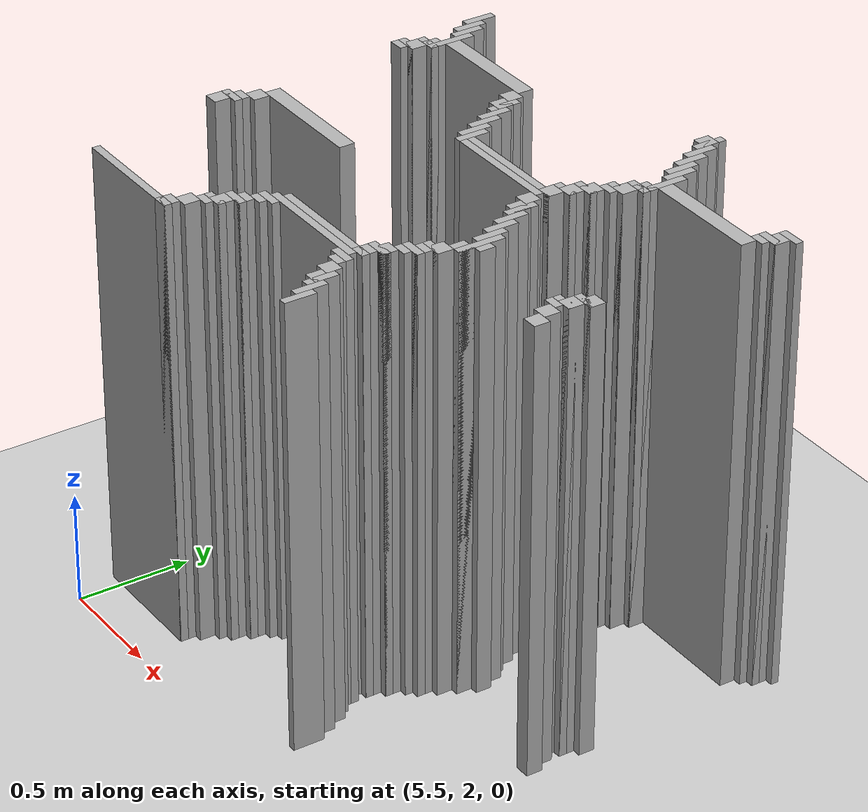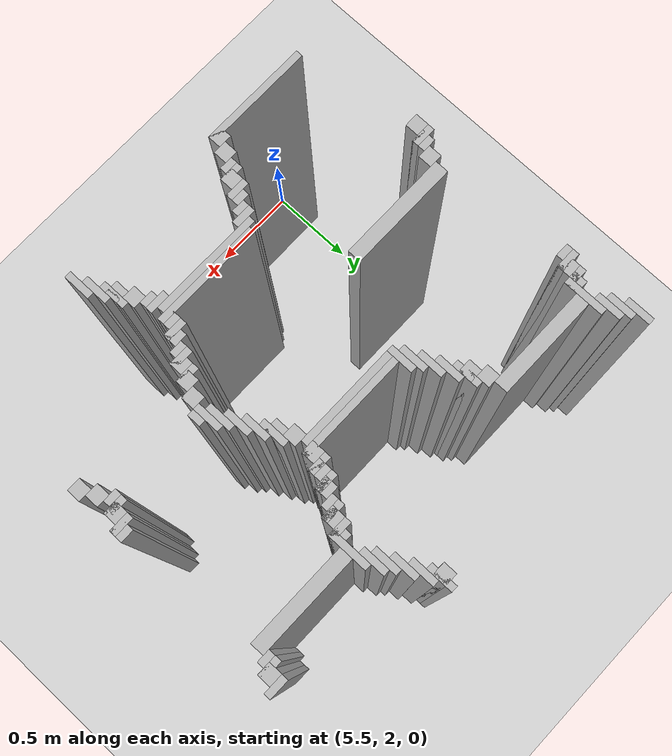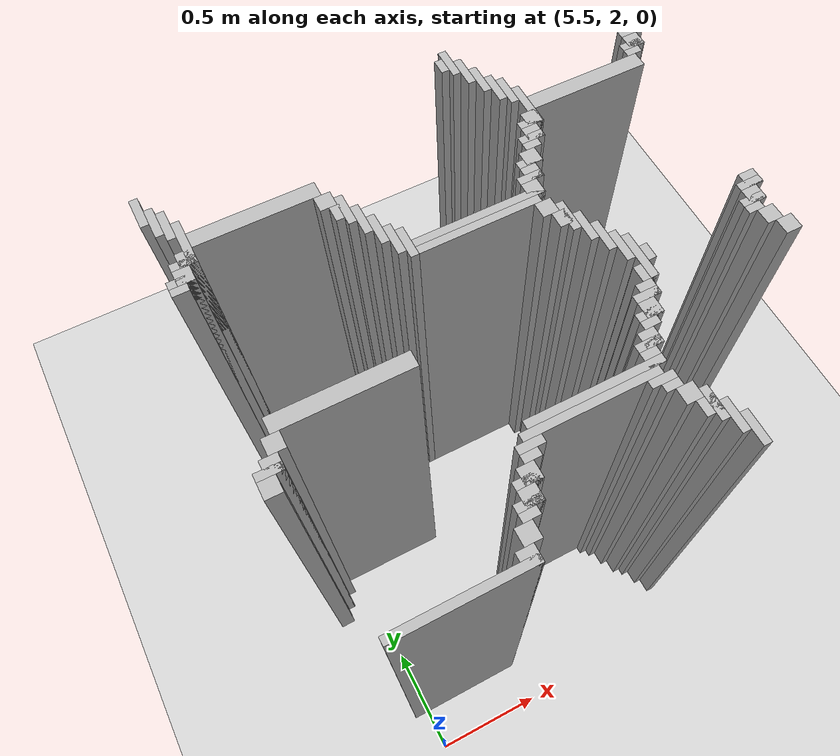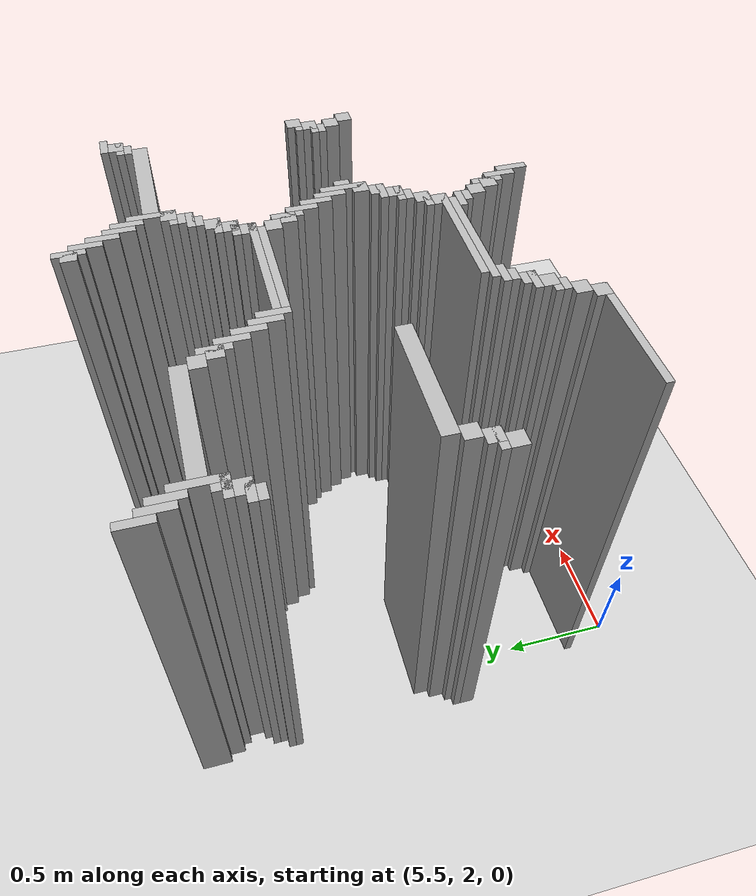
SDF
<sdf version="1.6">
 <world name="slam_world">
  <model name="ground_plane">
   <static>true</static>
   <link name="link">
    <collision name="collision">
     <geometry><plane><normal>0 0 1</normal><size>100 100</size></plane></geometry>
    </collision>
    <visual name="visual">
     <geometry><plane><normal>0 0 1</normal><size>100 100</size></plane></geometry>
     <material>
      <ambient>0.8 0.8 0.8 1</ambient>
      <diffuse>0.8 0.8 0.8 1</diffuse>
      <specular>0.8 0.8 0.8 1</specular>
     </material>
    </visual>
   </link>
  </model>
  <model name="wall_4433">
   <static>true</static>
   <pose>6.69953596287703 4.211136890951276 1.0 0 0 0</pose>
   <link name="link">
    <collision name="collision">
     <geometry><box><size>0.03480278422273782 0.13921113689095127 2.0</size></box></geometry>
    </collision>
    <visual name="visual">
     <geometry><box><size>0.03480278422273782 0.13921113689095127 2.0</size></box></geometry>
     <material><ambient>0.5 0.5 0.5 1</ambient><diffuse>0.7 0.7 0.7 1</diffuse></material>
    </visual>
   </link>
  </model>
  <model name="wall_4447">
   <static>true</static>
   <pose>6.682134570765661 4.211136890951276 1.0 0 0 0</pose>
   <link name="link">
    <collision name="collision">
     <geometry><box><size>0.06960556844547564 0.06960556844547564 2.0</size></box></geometry>
    </collision>
    <visual name="visual">
     <geometry><box><size>0.06960556844547564 0.06960556844547564 2.0</size></box></geometry>
     <material><ambient>0.5 0.5 0.5 1</ambient><diffuse>0.7 0.7 0.7 1</diffuse></material>
    </visual>
   </link>
  </model>
  <model name="wall_4462">
   <static>true</static>
   <pose>6.734338747099768 4.1415313225058 1.0 0 0 0</pose>
   <link name="link">
    <collision name="collision">
     <geometry><box><size>0.03480278422273782 0.13921113689095127 2.0</size></box></geometry>
    </collision>
    <visual name="visual">
     <geometry><box><size>0.03480278422273782 0.13921113689095127 2.0</size></box></geometry>
     <material><ambient>0.5 0.5 0.5 1</ambient><diffuse>0.7 0.7 0.7 1</diffuse></material>
    </visual>
   </link>
  </model>
  <model name="wall_4486">
   <static>true</static>
   <pose>5.307424593967517 4.071925754060325 1.0 0 0 0</pose>
   <link name="link">
    <collision name="collision">
     <geometry><box><size>0.03480278422273782 0.13921113689095127 2.0</size></box></geometry>
    </collision>
    <visual name="visual">
     <geometry><box><size>0.03480278422273782 0.13921113689095127 2.0</size></box></geometry>
     <material><ambient>0.5 0.5 0.5 1</ambient><diffuse>0.7 0.7 0.7 1</diffuse></material>
    </visual>
   </link>
  </model>
  <model name="wall_4487">
   <static>true</static>
   <pose>6.769141531322505 4.071925754060325 1.0 0 0 0</pose>
   <link name="link">
    <collision name="collision">
     <geometry><box><size>0.03480278422273782 0.13921113689095127 2.0</size></box></geometry>
    </collision>
    <visual name="visual">
     <geometry><box><size>0.03480278422273782 0.13921113689095127 2.0</size></box></geometry>
     <material><ambient>0.5 0.5 0.5 1</ambient><diffuse>0.7 0.7 0.7 1</diffuse></material>
    </visual>
   </link>
  </model>
  <model name="wall_4501">
   <static>true</static>
   <pose>5.342227378190255 4.002320185614849 1.0 0 0 0</pose>
   <link name="link">
    <collision name="collision">
     <geometry><box><size>0.03480278422273782 0.13921113689095127 2.0</size></box></geometry>
    </collision>
    <visual name="visual">
     <geometry><box><size>0.03480278422273782 0.13921113689095127 2.0</size></box></geometry>
     <material><ambient>0.5 0.5 0.5 1</ambient><diffuse>0.7 0.7 0.7 1</diffuse></material>
    </visual>
   </link>
  </model>
  <model name="wall_4502">
   <static>true</static>
   <pose>6.803944315545244 4.002320185614849 1.0 0 0 0</pose>
   <link name="link">
    <collision name="collision">
     <geometry><box><size>0.03480278422273782 0.13921113689095127 2.0</size></box></geometry>
    </collision>
    <visual name="visual">
     <geometry><box><size>0.03480278422273782 0.13921113689095127 2.0</size></box></geometry>
     <material><ambient>0.5 0.5 0.5 1</ambient><diffuse>0.7 0.7 0.7 1</diffuse></material>
    </visual>
   </link>
  </model>
  <model name="wall_4516">
   <static>true</static>
   <pose>5.377030162412993 3.967517401392111 1.0 0 0 0</pose>
   <link name="link">
    <collision name="collision">
     <geometry><box><size>0.03480278422273782 0.13921113689095127 2.0</size></box></geometry>
    </collision>
    <visual name="visual">
     <geometry><box><size>0.03480278422273782 0.13921113689095127 2.0</size></box></geometry>
     <material><ambient>0.5 0.5 0.5 1</ambient><diffuse>0.7 0.7 0.7 1</diffuse></material>
    </visual>
   </link>
  </model>
  <model name="wall_4517">
   <static>true</static>
   <pose>6.838747099767981 3.967517401392111 1.0 0 0 0</pose>
   <link name="link">
    <collision name="collision">
     <geometry><box><size>0.03480278422273782 0.13921113689095127 2.0</size></box></geometry>
    </collision>
    <visual name="visual">
     <geometry><box><size>0.03480278422273782 0.13921113689095127 2.0</size></box></geometry>
     <material><ambient>0.5 0.5 0.5 1</ambient><diffuse>0.7 0.7 0.7 1</diffuse></material>
    </visual>
   </link>
  </model>
  <model name="wall_4518">
   <static>true</static>
   <pose>7.465197215777262 4.019721577726218 1.0 0 0 0</pose>
   <link name="link">
    <collision name="collision">
     <geometry><box><size>0.10440835266821345 0.03480278422273782 2.0</size></box></geometry>
    </collision>
    <visual name="visual">
     <geometry><box><size>0.10440835266821345 0.03480278422273782 2.0</size></box></geometry>
     <material><ambient>0.5 0.5 0.5 1</ambient><diffuse>0.7 0.7 0.7 1</diffuse></material>
    </visual>
   </link>
  </model>
  <model name="wall_4530">
   <static>true</static>
   <pose>7.447795823665893 3.967517401392111 1.0 0 0 0</pose>
   <link name="link">
    <collision name="collision">
     <geometry><box><size>0.06960556844547564 0.06960556844547564 2.0</size></box></geometry>
    </collision>
    <visual name="visual">
     <geometry><box><size>0.06960556844547564 0.06960556844547564 2.0</size></box></geometry>
     <material><ambient>0.5 0.5 0.5 1</ambient><diffuse>0.7 0.7 0.7 1</diffuse></material>
    </visual>
   </link>
  </model>
  <model name="wall_4539">
   <static>true</static>
   <pose>5.41183294663573 3.863109048723898 1.0 0 0 0</pose>
   <link name="link">
    <collision name="collision">
     <geometry><box><size>0.03480278422273782 0.2088167053364269 2.0</size></box></geometry>
    </collision>
    <visual name="visual">
     <geometry><box><size>0.03480278422273782 0.2088167053364269 2.0</size></box></geometry>
     <material><ambient>0.5 0.5 0.5 1</ambient><diffuse>0.7 0.7 0.7 1</diffuse></material>
    </visual>
   </link>
  </model>
  <model name="wall_4540">
   <static>true</static>
   <pose>6.8735498839907185 3.863109048723898 1.0 0 0 0</pose>
   <link name="link">
    <collision name="collision">
     <geometry><box><size>0.03480278422273782 0.2088167053364269 2.0</size></box></geometry>
    </collision>
    <visual name="visual">
     <geometry><box><size>0.03480278422273782 0.2088167053364269 2.0</size></box></geometry>
     <material><ambient>0.5 0.5 0.5 1</ambient><diffuse>0.7 0.7 0.7 1</diffuse></material>
    </visual>
   </link>
  </model>
  <model name="wall_4541">
   <static>true</static>
   <pose>7.430394431554524 3.9501160092807424 1.0 0 0 0</pose>
   <link name="link">
    <collision name="collision">
     <geometry><box><size>0.10440835266821345 0.03480278422273782 2.0</size></box></geometry>
    </collision>
    <visual name="visual">
     <geometry><box><size>0.10440835266821345 0.03480278422273782 2.0</size></box></geometry>
     <material><ambient>0.5 0.5 0.5 1</ambient><diffuse>0.7 0.7 0.7 1</diffuse></material>
    </visual>
   </link>
  </model>
  <model name="wall_4553">
   <static>true</static>
   <pose>7.412993039443156 3.9153132250580045 1.0 0 0 0</pose>
   <link name="link">
    <collision name="collision">
     <geometry><box><size>0.06960556844547564 0.03480278422273782 2.0</size></box></geometry>
    </collision>
    <visual name="visual">
     <geometry><box><size>0.06960556844547564 0.03480278422273782 2.0</size></box></geometry>
     <material><ambient>0.5 0.5 0.5 1</ambient><diffuse>0.7 0.7 0.7 1</diffuse></material>
    </visual>
   </link>
  </model>
  <model name="wall_4562">
   <static>true</static>
   <pose>5.690255220417633 3.863109048723898 1.0 0 0 0</pose>
   <link name="link">
    <collision name="collision">
     <geometry><box><size>0.5220417633410672 0.06960556844547564 2.0</size></box></geometry>
    </collision>
    <visual name="visual">
     <geometry><box><size>0.5220417633410672 0.06960556844547564 2.0</size></box></geometry>
     <material><ambient>0.5 0.5 0.5 1</ambient><diffuse>0.7 0.7 0.7 1</diffuse></material>
    </visual>
   </link>
  </model>
  <model name="wall_4563">
   <static>true</static>
   <pose>7.151972157772621 3.863109048723898 1.0 0 0 0</pose>
   <link name="link">
    <collision name="collision">
     <geometry><box><size>0.5220417633410672 0.06960556844547564 2.0</size></box></geometry>
    </collision>
    <visual name="visual">
     <geometry><box><size>0.5220417633410672 0.06960556844547564 2.0</size></box></geometry>
     <material><ambient>0.5 0.5 0.5 1</ambient><diffuse>0.7 0.7 0.7 1</diffuse></material>
    </visual>
   </link>
  </model>
  <model name="wall_4576">
   <static>true</static>
   <pose>5.3944315545243615 3.793503480278422 1.0 0 0 0</pose>
   <link name="link">
    <collision name="collision">
     <geometry><box><size>0.06960556844547564 0.06960556844547564 2.0</size></box></geometry>
    </collision>
    <visual name="visual">
     <geometry><box><size>0.06960556844547564 0.06960556844547564 2.0</size></box></geometry>
     <material><ambient>0.5 0.5 0.5 1</ambient><diffuse>0.7 0.7 0.7 1</diffuse></material>
    </visual>
   </link>
  </model>
  <model name="wall_4577">
   <static>true</static>
   <pose>5.951276102088166 3.793503480278422 1.0 0 0 0</pose>
   <link name="link">
    <collision name="collision">
     <geometry><box><size>0.06960556844547564 0.06960556844547564 2.0</size></box></geometry>
    </collision>
    <visual name="visual">
     <geometry><box><size>0.06960556844547564 0.06960556844547564 2.0</size></box></geometry>
     <material><ambient>0.5 0.5 0.5 1</ambient><diffuse>0.7 0.7 0.7 1</diffuse></material>
    </visual>
   </link>
  </model>
  <model name="wall_4578">
   <static>true</static>
   <pose>6.85614849187935 3.793503480278422 1.0 0 0 0</pose>
   <link name="link">
    <collision name="collision">
     <geometry><box><size>0.06960556844547564 0.06960556844547564 2.0</size></box></geometry>
    </collision>
    <visual name="visual">
     <geometry><box><size>0.06960556844547564 0.06960556844547564 2.0</size></box></geometry>
     <material><ambient>0.5 0.5 0.5 1</ambient><diffuse>0.7 0.7 0.7 1</diffuse></material>
    </visual>
   </link>
  </model>
  <model name="wall_4590">
   <static>true</static>
   <pose>5.377030162412993 3.776102088167053 1.0 0 0 0</pose>
   <link name="link">
    <collision name="collision">
     <geometry><box><size>0.10440835266821345 0.03480278422273782 2.0</size></box></geometry>
    </collision>
    <visual name="visual">
     <geometry><box><size>0.10440835266821345 0.03480278422273782 2.0</size></box></geometry>
     <material><ambient>0.5 0.5 0.5 1</ambient><diffuse>0.7 0.7 0.7 1</diffuse></material>
    </visual>
   </link>
  </model>
  <model name="wall_4591">
   <static>true</static>
   <pose>6.003480278422273 3.7238979118329465 1.0 0 0 0</pose>
   <link name="link">
    <collision name="collision">
     <geometry><box><size>0.03480278422273782 0.13921113689095127 2.0</size></box></geometry>
    </collision>
    <visual name="visual">
     <geometry><box><size>0.03480278422273782 0.13921113689095127 2.0</size></box></geometry>
     <material><ambient>0.5 0.5 0.5 1</ambient><diffuse>0.7 0.7 0.7 1</diffuse></material>
    </visual>
   </link>
  </model>
  <model name="wall_4592">
   <static>true</static>
   <pose>6.838747099767981 3.776102088167053 1.0 0 0 0</pose>
   <link name="link">
    <collision name="collision">
     <geometry><box><size>0.10440835266821345 0.03480278422273782 2.0</size></box></geometry>
    </collision>
    <visual name="visual">
     <geometry><box><size>0.10440835266821345 0.03480278422273782 2.0</size></box></geometry>
     <material><ambient>0.5 0.5 0.5 1</ambient><diffuse>0.7 0.7 0.7 1</diffuse></material>
    </visual>
   </link>
  </model>
  <model name="wall_4604">
   <static>true</static>
   <pose>5.359628770301624 3.7238979118329465 1.0 0 0 0</pose>
   <link name="link">
    <collision name="collision">
     <geometry><box><size>0.06960556844547564 0.06960556844547564 2.0</size></box></geometry>
    </collision>
    <visual name="visual">
     <geometry><box><size>0.06960556844547564 0.06960556844547564 2.0</size></box></geometry>
     <material><ambient>0.5 0.5 0.5 1</ambient><diffuse>0.7 0.7 0.7 1</diffuse></material>
    </visual>
   </link>
  </model>
  <model name="wall_4605">
   <static>true</static>
   <pose>5.986078886310905 3.7238979118329465 1.0 0 0 0</pose>
   <link name="link">
    <collision name="collision">
     <geometry><box><size>0.06960556844547564 0.06960556844547564 2.0</size></box></geometry>
    </collision>
    <visual name="visual">
     <geometry><box><size>0.06960556844547564 0.06960556844547564 2.0</size></box></geometry>
     <material><ambient>0.5 0.5 0.5 1</ambient><diffuse>0.7 0.7 0.7 1</diffuse></material>
    </visual>
   </link>
  </model>
  <model name="wall_4606">
   <static>true</static>
   <pose>6.821345707656612 3.7238979118329465 1.0 0 0 0</pose>
   <link name="link">
    <collision name="collision">
     <geometry><box><size>0.06960556844547564 0.06960556844547564 2.0</size></box></geometry>
    </collision>
    <visual name="visual">
     <geometry><box><size>0.06960556844547564 0.06960556844547564 2.0</size></box></geometry>
     <material><ambient>0.5 0.5 0.5 1</ambient><diffuse>0.7 0.7 0.7 1</diffuse></material>
    </visual>
   </link>
  </model>
  <model name="wall_4618">
   <static>true</static>
   <pose>5.342227378190255 3.706496519721578 1.0 0 0 0</pose>
   <link name="link">
    <collision name="collision">
     <geometry><box><size>0.10440835266821345 0.03480278422273782 2.0</size></box></geometry>
    </collision>
    <visual name="visual">
     <geometry><box><size>0.10440835266821345 0.03480278422273782 2.0</size></box></geometry>
     <material><ambient>0.5 0.5 0.5 1</ambient><diffuse>0.7 0.7 0.7 1</diffuse></material>
    </visual>
   </link>
  </model>
  <model name="wall_4619">
   <static>true</static>
   <pose>6.038283062645012 3.6542923433874708 1.0 0 0 0</pose>
   <link name="link">
    <collision name="collision">
     <geometry><box><size>0.03480278422273782 0.13921113689095127 2.0</size></box></geometry>
    </collision>
    <visual name="visual">
     <geometry><box><size>0.03480278422273782 0.13921113689095127 2.0</size></box></geometry>
     <material><ambient>0.5 0.5 0.5 1</ambient><diffuse>0.7 0.7 0.7 1</diffuse></material>
    </visual>
   </link>
  </model>
  <model name="wall_4620">
   <static>true</static>
   <pose>6.803944315545244 3.706496519721578 1.0 0 0 0</pose>
   <link name="link">
    <collision name="collision">
     <geometry><box><size>0.10440835266821345 0.03480278422273782 2.0</size></box></geometry>
    </collision>
    <visual name="visual">
     <geometry><box><size>0.10440835266821345 0.03480278422273782 2.0</size></box></geometry>
     <material><ambient>0.5 0.5 0.5 1</ambient><diffuse>0.7 0.7 0.7 1</diffuse></material>
    </visual>
   </link>
  </model>
  <model name="wall_4630">
   <static>true</static>
   <pose>5.324825986078886 3.67169373549884 1.0 0 0 0</pose>
   <link name="link">
    <collision name="collision">
     <geometry><box><size>0.06960556844547564 0.03480278422273782 2.0</size></box></geometry>
    </collision>
    <visual name="visual">
     <geometry><box><size>0.06960556844547564 0.03480278422273782 2.0</size></box></geometry>
     <material><ambient>0.5 0.5 0.5 1</ambient><diffuse>0.7 0.7 0.7 1</diffuse></material>
    </visual>
   </link>
  </model>
  <model name="wall_4631">
   <static>true</static>
   <pose>6.786542923433874 3.67169373549884 1.0 0 0 0</pose>
   <link name="link">
    <collision name="collision">
     <geometry><box><size>0.06960556844547564 0.03480278422273782 2.0</size></box></geometry>
    </collision>
    <visual name="visual">
     <geometry><box><size>0.06960556844547564 0.03480278422273782 2.0</size></box></geometry>
     <material><ambient>0.5 0.5 0.5 1</ambient><diffuse>0.7 0.7 0.7 1</diffuse></material>
    </visual>
   </link>
  </model>
  <model name="wall_4642">
   <static>true</static>
   <pose>6.073085846867749 3.584686774941995 1.0 0 0 0</pose>
   <link name="link">
    <collision name="collision">
     <geometry><box><size>0.03480278422273782 0.13921113689095127 2.0</size></box></geometry>
    </collision>
    <visual name="visual">
     <geometry><box><size>0.03480278422273782 0.13921113689095127 2.0</size></box></geometry>
     <material><ambient>0.5 0.5 0.5 1</ambient><diffuse>0.7 0.7 0.7 1</diffuse></material>
    </visual>
   </link>
  </model>
  <model name="wall_4643">
   <static>true</static>
   <pose>6.751740139211137 3.619489559164733 1.0 0 0 0</pose>
   <link name="link">
    <collision name="collision">
     <geometry><box><size>0.06960556844547564 0.06960556844547564 2.0</size></box></geometry>
    </collision>
    <visual name="visual">
     <geometry><box><size>0.06960556844547564 0.06960556844547564 2.0</size></box></geometry>
     <material><ambient>0.5 0.5 0.5 1</ambient><diffuse>0.7 0.7 0.7 1</diffuse></material>
    </visual>
   </link>
  </model>
  <model name="wall_4654">
   <static>true</static>
   <pose>6.734338747099768 3.602088167053364 1.0 0 0 0</pose>
   <link name="link">
    <collision name="collision">
     <geometry><box><size>0.10440835266821345 0.03480278422273782 2.0</size></box></geometry>
    </collision>
    <visual name="visual">
     <geometry><box><size>0.10440835266821345 0.03480278422273782 2.0</size></box></geometry>
     <material><ambient>0.5 0.5 0.5 1</ambient><diffuse>0.7 0.7 0.7 1</diffuse></material>
    </visual>
   </link>
  </model>
  <model name="wall_4665">
   <static>true</static>
   <pose>6.107888631090487 3.51508120649652 1.0 0 0 0</pose>
   <link name="link">
    <collision name="collision">
     <geometry><box><size>0.03480278422273782 0.13921113689095127 2.0</size></box></geometry>
    </collision>
    <visual name="visual">
     <geometry><box><size>0.03480278422273782 0.13921113689095127 2.0</size></box></geometry>
     <material><ambient>0.5 0.5 0.5 1</ambient><diffuse>0.7 0.7 0.7 1</diffuse></material>
    </visual>
   </link>
  </model>
  <model name="wall_4666">
   <static>true</static>
   <pose>6.716937354988398 3.549883990719257 1.0 0 0 0</pose>
   <link name="link">
    <collision name="collision">
     <geometry><box><size>0.06960556844547564 0.06960556844547564 2.0</size></box></geometry>
    </collision>
    <visual name="visual">
     <geometry><box><size>0.06960556844547564 0.06960556844547564 2.0</size></box></geometry>
     <material><ambient>0.5 0.5 0.5 1</ambient><diffuse>0.7 0.7 0.7 1</diffuse></material>
    </visual>
   </link>
  </model>
  <model name="wall_4679">
   <static>true</static>
   <pose>6.142691415313225 3.480278422273782 1.0 0 0 0</pose>
   <link name="link">
    <collision name="collision">
     <geometry><box><size>0.03480278422273782 0.13921113689095127 2.0</size></box></geometry>
    </collision>
    <visual name="visual">
     <geometry><box><size>0.03480278422273782 0.13921113689095127 2.0</size></box></geometry>
     <material><ambient>0.5 0.5 0.5 1</ambient><diffuse>0.7 0.7 0.7 1</diffuse></material>
    </visual>
   </link>
  </model>
  <model name="wall_4680">
   <static>true</static>
   <pose>6.69953596287703 3.5324825986078885 1.0 0 0 0</pose>
   <link name="link">
    <collision name="collision">
     <geometry><box><size>0.10440835266821345 0.03480278422273782 2.0</size></box></geometry>
    </collision>
    <visual name="visual">
     <geometry><box><size>0.10440835266821345 0.03480278422273782 2.0</size></box></geometry>
     <material><ambient>0.5 0.5 0.5 1</ambient><diffuse>0.7 0.7 0.7 1</diffuse></material>
    </visual>
   </link>
  </model>
  <model name="wall_4691">
   <static>true</static>
   <pose>6.682134570765661 3.480278422273782 1.0 0 0 0</pose>
   <link name="link">
    <collision name="collision">
     <geometry><box><size>0.06960556844547564 0.06960556844547564 2.0</size></box></geometry>
    </collision>
    <visual name="visual">
     <geometry><box><size>0.06960556844547564 0.06960556844547564 2.0</size></box></geometry>
     <material><ambient>0.5 0.5 0.5 1</ambient><diffuse>0.7 0.7 0.7 1</diffuse></material>
    </visual>
   </link>
  </model>
  <model name="wall_4702">
   <static>true</static>
   <pose>6.438515081206496 3.4628770301624128 1.0 0 0 0</pose>
   <link name="link">
    <collision name="collision">
     <geometry><box><size>0.5568445475638051 0.03480278422273782 2.0</size></box></geometry>
    </collision>
    <visual name="visual">
     <geometry><box><size>0.5568445475638051 0.03480278422273782 2.0</size></box></geometry>
     <material><ambient>0.5 0.5 0.5 1</ambient><diffuse>0.7 0.7 0.7 1</diffuse></material>
    </visual>
   </link>
  </model>
  <model name="wall_4714">
   <static>true</static>
   <pose>6.421113689095128 3.428074245939675 1.0 0 0 0</pose>
   <link name="link">
    <collision name="collision">
     <geometry><box><size>0.5220417633410672 0.03480278422273782 2.0</size></box></geometry>
    </collision>
    <visual name="visual">
     <geometry><box><size>0.5220417633410672 0.03480278422273782 2.0</size></box></geometry>
     <material><ambient>0.5 0.5 0.5 1</ambient><diffuse>0.7 0.7 0.7 1</diffuse></material>
    </visual>
   </link>
  </model>
  <model name="wall_4724">
   <static>true</static>
   <pose>6.682134570765661 3.3758700696055683 1.0 0 0 0</pose>
   <link name="link">
    <collision name="collision">
     <geometry><box><size>0.06960556844547564 0.06960556844547564 2.0</size></box></geometry>
    </collision>
    <visual name="visual">
     <geometry><box><size>0.06960556844547564 0.06960556844547564 2.0</size></box></geometry>
     <material><ambient>0.5 0.5 0.5 1</ambient><diffuse>0.7 0.7 0.7 1</diffuse></material>
    </visual>
   </link>
  </model>
  <model name="wall_4738">
   <static>true</static>
   <pose>6.734338747099768 3.3062645011600926 1.0 0 0 0</pose>
   <link name="link">
    <collision name="collision">
     <geometry><box><size>0.03480278422273782 0.13921113689095127 2.0</size></box></geometry>
    </collision>
    <visual name="visual">
     <geometry><box><size>0.03480278422273782 0.13921113689095127 2.0</size></box></geometry>
     <material><ambient>0.5 0.5 0.5 1</ambient><diffuse>0.7 0.7 0.7 1</diffuse></material>
    </visual>
   </link>
  </model>
  <model name="wall_4752">
   <static>true</static>
   <pose>6.716937354988398 3.3062645011600926 1.0 0 0 0</pose>
   <link name="link">
    <collision name="collision">
     <geometry><box><size>0.06960556844547564 0.06960556844547564 2.0</size></box></geometry>
    </collision>
    <visual name="visual">
     <geometry><box><size>0.06960556844547564 0.06960556844547564 2.0</size></box></geometry>
     <material><ambient>0.5 0.5 0.5 1</ambient><diffuse>0.7 0.7 0.7 1</diffuse></material>
    </visual>
   </link>
  </model>
  <model name="wall_4766">
   <static>true</static>
   <pose>6.769141531322505 3.236658932714617 1.0 0 0 0</pose>
   <link name="link">
    <collision name="collision">
     <geometry><box><size>0.03480278422273782 0.13921113689095127 2.0</size></box></geometry>
    </collision>
    <visual name="visual">
     <geometry><box><size>0.03480278422273782 0.13921113689095127 2.0</size></box></geometry>
     <material><ambient>0.5 0.5 0.5 1</ambient><diffuse>0.7 0.7 0.7 1</diffuse></material>
    </visual>
   </link>
  </model>
  <model name="wall_4787">
   <static>true</static>
   <pose>6.803944315545244 3.167053364269141 1.0 0 0 0</pose>
   <link name="link">
    <collision name="collision">
     <geometry><box><size>0.03480278422273782 0.13921113689095127 2.0</size></box></geometry>
    </collision>
    <visual name="visual">
     <geometry><box><size>0.03480278422273782 0.13921113689095127 2.0</size></box></geometry>
     <material><ambient>0.5 0.5 0.5 1</ambient><diffuse>0.7 0.7 0.7 1</diffuse></material>
    </visual>
   </link>
  </model>
  <model name="wall_4801">
   <static>true</static>
   <pose>6.838747099767981 3.097447795823666 1.0 0 0 0</pose>
   <link name="link">
    <collision name="collision">
     <geometry><box><size>0.03480278422273782 0.13921113689095127 2.0</size></box></geometry>
    </collision>
    <visual name="visual">
     <geometry><box><size>0.03480278422273782 0.13921113689095127 2.0</size></box></geometry>
     <material><ambient>0.5 0.5 0.5 1</ambient><diffuse>0.7 0.7 0.7 1</diffuse></material>
    </visual>
   </link>
  </model>
  <model name="wall_4802">
   <static>true</static>
   <pose>7.447795823665893 3.1322505800464038 1.0 0 0 0</pose>
   <link name="link">
    <collision name="collision">
     <geometry><box><size>0.06960556844547564 0.06960556844547564 2.0</size></box></geometry>
    </collision>
    <visual name="visual">
     <geometry><box><size>0.06960556844547564 0.06960556844547564 2.0</size></box></geometry>
     <material><ambient>0.5 0.5 0.5 1</ambient><diffuse>0.7 0.7 0.7 1</diffuse></material>
    </visual>
   </link>
  </model>
  <model name="wall_4815">
   <static>true</static>
   <pose>6.8735498839907185 3.02784222737819 1.0 0 0 0</pose>
   <link name="link">
    <collision name="collision">
     <geometry><box><size>0.03480278422273782 0.2088167053364269 2.0</size></box></geometry>
    </collision>
    <visual name="visual">
     <geometry><box><size>0.03480278422273782 0.2088167053364269 2.0</size></box></geometry>
     <material><ambient>0.5 0.5 0.5 1</ambient><diffuse>0.7 0.7 0.7 1</diffuse></material>
    </visual>
   </link>
  </model>
  <model name="wall_4816">
   <static>true</static>
   <pose>7.430394431554524 3.1148491879350346 1.0 0 0 0</pose>
   <link name="link">
    <collision name="collision">
     <geometry><box><size>0.10440835266821345 0.03480278422273782 2.0</size></box></geometry>
    </collision>
    <visual name="visual">
     <geometry><box><size>0.10440835266821345 0.03480278422273782 2.0</size></box></geometry>
     <material><ambient>0.5 0.5 0.5 1</ambient><diffuse>0.7 0.7 0.7 1</diffuse></material>
    </visual>
   </link>
  </model>
  <model name="wall_4827">
   <static>true</static>
   <pose>7.412993039443156 3.062645011600928 1.0 0 0 0</pose>
   <link name="link">
    <collision name="collision">
     <geometry><box><size>0.06960556844547564 0.06960556844547564 2.0</size></box></geometry>
    </collision>
    <visual name="visual">
     <geometry><box><size>0.06960556844547564 0.06960556844547564 2.0</size></box></geometry>
     <material><ambient>0.5 0.5 0.5 1</ambient><diffuse>0.7 0.7 0.7 1</diffuse></material>
    </visual>
   </link>
  </model>
  <model name="wall_4836">
   <static>true</static>
   <pose>5.672853828306264 3.02784222737819 1.0 0 0 0</pose>
   <link name="link">
    <collision name="collision">
     <geometry><box><size>0.5568445475638051 0.06960556844547564 2.0</size></box></geometry>
    </collision>
    <visual name="visual">
     <geometry><box><size>0.5568445475638051 0.06960556844547564 2.0</size></box></geometry>
     <material><ambient>0.5 0.5 0.5 1</ambient><diffuse>0.7 0.7 0.7 1</diffuse></material>
    </visual>
   </link>
  </model>
  <model name="wall_4837">
   <static>true</static>
   <pose>6.908352668213457 3.02784222737819 1.0 0 0 0</pose>
   <link name="link">
    <collision name="collision">
     <geometry><box><size>0.03480278422273782 0.06960556844547564 2.0</size></box></geometry>
    </collision>
    <visual name="visual">
     <geometry><box><size>0.03480278422273782 0.06960556844547564 2.0</size></box></geometry>
     <material><ambient>0.5 0.5 0.5 1</ambient><diffuse>0.7 0.7 0.7 1</diffuse></material>
    </visual>
   </link>
  </model>
  <model name="wall_4838">
   <static>true</static>
   <pose>7.395591647331786 3.045243619489559 1.0 0 0 0</pose>
   <link name="link">
    <collision name="collision">
     <geometry><box><size>0.10440835266821345 0.03480278422273782 2.0</size></box></geometry>
    </collision>
    <visual name="visual">
     <geometry><box><size>0.10440835266821345 0.03480278422273782 2.0</size></box></geometry>
     <material><ambient>0.5 0.5 0.5 1</ambient><diffuse>0.7 0.7 0.7 1</diffuse></material>
    </visual>
   </link>
  </model>
  <model name="wall_4850">
   <static>true</static>
   <pose>7.378190255220417 3.010440835266821 1.0 0 0 0</pose>
   <link name="link">
    <collision name="collision">
     <geometry><box><size>0.06960556844547564 0.03480278422273782 2.0</size></box></geometry>
    </collision>
    <visual name="visual">
     <geometry><box><size>0.06960556844547564 0.03480278422273782 2.0</size></box></geometry>
     <material><ambient>0.5 0.5 0.5 1</ambient><diffuse>0.7 0.7 0.7 1</diffuse></material>
    </visual>
   </link>
  </model>
  <model name="wall_4859">
   <static>true</static>
   <pose>5.3944315545243615 2.9582366589327145 1.0 0 0 0</pose>
   <link name="link">
    <collision name="collision">
     <geometry><box><size>0.06960556844547564 0.06960556844547564 2.0</size></box></geometry>
    </collision>
    <visual name="visual">
     <geometry><box><size>0.06960556844547564 0.06960556844547564 2.0</size></box></geometry>
     <material><ambient>0.5 0.5 0.5 1</ambient><diffuse>0.7 0.7 0.7 1</diffuse></material>
    </visual>
   </link>
  </model>
  <model name="wall_4860">
   <static>true</static>
   <pose>6.85614849187935 2.9582366589327145 1.0 0 0 0</pose>
   <link name="link">
    <collision name="collision">
     <geometry><box><size>0.06960556844547564 0.06960556844547564 2.0</size></box></geometry>
    </collision>
    <visual name="visual">
     <geometry><box><size>0.06960556844547564 0.06960556844547564 2.0</size></box></geometry>
     <material><ambient>0.5 0.5 0.5 1</ambient><diffuse>0.7 0.7 0.7 1</diffuse></material>
    </visual>
   </link>
  </model>
  <model name="wall_4861">
   <static>true</static>
   <pose>7.412993039443156 2.9582366589327145 1.0 0 0 0</pose>
   <link name="link">
    <collision name="collision">
     <geometry><box><size>0.06960556844547564 0.06960556844547564 2.0</size></box></geometry>
    </collision>
    <visual name="visual">
     <geometry><box><size>0.06960556844547564 0.06960556844547564 2.0</size></box></geometry>
     <material><ambient>0.5 0.5 0.5 1</ambient><diffuse>0.7 0.7 0.7 1</diffuse></material>
    </visual>
   </link>
  </model>
  <model name="wall_4877">
   <static>true</static>
   <pose>5.359628770301624 2.8886310904872388 1.0 0 0 0</pose>
   <link name="link">
    <collision name="collision">
     <geometry><box><size>0.06960556844547564 0.06960556844547564 2.0</size></box></geometry>
    </collision>
    <visual name="visual">
     <geometry><box><size>0.06960556844547564 0.06960556844547564 2.0</size></box></geometry>
     <material><ambient>0.5 0.5 0.5 1</ambient><diffuse>0.7 0.7 0.7 1</diffuse></material>
    </visual>
   </link>
  </model>
  <model name="wall_4878">
   <static>true</static>
   <pose>6.821345707656612 2.8886310904872388 1.0 0 0 0</pose>
   <link name="link">
    <collision name="collision">
     <geometry><box><size>0.06960556844547564 0.06960556844547564 2.0</size></box></geometry>
    </collision>
    <visual name="visual">
     <geometry><box><size>0.06960556844547564 0.06960556844547564 2.0</size></box></geometry>
     <material><ambient>0.5 0.5 0.5 1</ambient><diffuse>0.7 0.7 0.7 1</diffuse></material>
    </visual>
   </link>
  </model>
  <model name="wall_4879">
   <static>true</static>
   <pose>7.447795823665893 2.8886310904872388 1.0 0 0 0</pose>
   <link name="link">
    <collision name="collision">
     <geometry><box><size>0.06960556844547564 0.06960556844547564 2.0</size></box></geometry>
    </collision>
    <visual name="visual">
     <geometry><box><size>0.06960556844547564 0.06960556844547564 2.0</size></box></geometry>
     <material><ambient>0.5 0.5 0.5 1</ambient><diffuse>0.7 0.7 0.7 1</diffuse></material>
    </visual>
   </link>
  </model>
  <model name="wall_4893">
   <static>true</static>
   <pose>5.342227378190255 2.87122969837587 1.0 0 0 0</pose>
   <link name="link">
    <collision name="collision">
     <geometry><box><size>0.10440835266821345 0.03480278422273782 2.0</size></box></geometry>
    </collision>
    <visual name="visual">
     <geometry><box><size>0.10440835266821345 0.03480278422273782 2.0</size></box></geometry>
     <material><ambient>0.5 0.5 0.5 1</ambient><diffuse>0.7 0.7 0.7 1</diffuse></material>
    </visual>
   </link>
  </model>
  <model name="wall_4894">
   <static>true</static>
   <pose>6.803944315545244 2.87122969837587 1.0 0 0 0</pose>
   <link name="link">
    <collision name="collision">
     <geometry><box><size>0.10440835266821345 0.03480278422273782 2.0</size></box></geometry>
    </collision>
    <visual name="visual">
     <geometry><box><size>0.10440835266821345 0.03480278422273782 2.0</size></box></geometry>
     <material><ambient>0.5 0.5 0.5 1</ambient><diffuse>0.7 0.7 0.7 1</diffuse></material>
    </visual>
   </link>
  </model>
  <model name="wall_4909">
   <static>true</static>
   <pose>5.324825986078886 2.819025522041763 1.0 0 0 0</pose>
   <link name="link">
    <collision name="collision">
     <geometry><box><size>0.06960556844547564 0.06960556844547564 2.0</size></box></geometry>
    </collision>
    <visual name="visual">
     <geometry><box><size>0.06960556844547564 0.06960556844547564 2.0</size></box></geometry>
     <material><ambient>0.5 0.5 0.5 1</ambient><diffuse>0.7 0.7 0.7 1</diffuse></material>
    </visual>
   </link>
  </model>
  <model name="wall_4910">
   <static>true</static>
   <pose>6.786542923433874 2.819025522041763 1.0 0 0 0</pose>
   <link name="link">
    <collision name="collision">
     <geometry><box><size>0.06960556844547564 0.06960556844547564 2.0</size></box></geometry>
    </collision>
    <visual name="visual">
     <geometry><box><size>0.06960556844547564 0.06960556844547564 2.0</size></box></geometry>
     <material><ambient>0.5 0.5 0.5 1</ambient><diffuse>0.7 0.7 0.7 1</diffuse></material>
    </visual>
   </link>
  </model>
  <model name="wall_4926">
   <static>true</static>
   <pose>6.769141531322505 2.8016241299303943 1.0 0 0 0</pose>
   <link name="link">
    <collision name="collision">
     <geometry><box><size>0.10440835266821345 0.03480278422273782 2.0</size></box></geometry>
    </collision>
    <visual name="visual">
     <geometry><box><size>0.10440835266821345 0.03480278422273782 2.0</size></box></geometry>
     <material><ambient>0.5 0.5 0.5 1</ambient><diffuse>0.7 0.7 0.7 1</diffuse></material>
    </visual>
   </link>
  </model>
  <model name="wall_4938">
   <static>true</static>
   <pose>6.751740139211137 2.7668213457076565 1.0 0 0 0</pose>
   <link name="link">
    <collision name="collision">
     <geometry><box><size>0.06960556844547564 0.03480278422273782 2.0</size></box></geometry>
    </collision>
    <visual name="visual">
     <geometry><box><size>0.06960556844547564 0.03480278422273782 2.0</size></box></geometry>
     <material><ambient>0.5 0.5 0.5 1</ambient><diffuse>0.7 0.7 0.7 1</diffuse></material>
    </visual>
   </link>
  </model>
  <model name="wall_4949">
   <static>true</static>
   <pose>6.716937354988398 2.71461716937355 1.0 0 0 0</pose>
   <link name="link">
    <collision name="collision">
     <geometry><box><size>0.06960556844547564 0.06960556844547564 2.0</size></box></geometry>
    </collision>
    <visual name="visual">
     <geometry><box><size>0.06960556844547564 0.06960556844547564 2.0</size></box></geometry>
     <material><ambient>0.5 0.5 0.5 1</ambient><diffuse>0.7 0.7 0.7 1</diffuse></material>
    </visual>
   </link>
  </model>
  <model name="wall_4965">
   <static>true</static>
   <pose>6.69953596287703 2.6972157772621808 1.0 0 0 0</pose>
   <link name="link">
    <collision name="collision">
     <geometry><box><size>0.10440835266821345 0.03480278422273782 2.0</size></box></geometry>
    </collision>
    <visual name="visual">
     <geometry><box><size>0.10440835266821345 0.03480278422273782 2.0</size></box></geometry>
     <material><ambient>0.5 0.5 0.5 1</ambient><diffuse>0.7 0.7 0.7 1</diffuse></material>
    </visual>
   </link>
  </model>
  <model name="wall_4977">
   <static>true</static>
   <pose>6.682134570765661 2.645011600928074 1.0 0 0 0</pose>
   <link name="link">
    <collision name="collision">
     <geometry><box><size>0.06960556844547564 0.06960556844547564 2.0</size></box></geometry>
    </collision>
    <visual name="visual">
     <geometry><box><size>0.06960556844547564 0.06960556844547564 2.0</size></box></geometry>
     <material><ambient>0.5 0.5 0.5 1</ambient><diffuse>0.7 0.7 0.7 1</diffuse></material>
    </visual>
   </link>
  </model>
  <model name="wall_4987">
   <static>true</static>
   <pose>6.438515081206496 2.627610208816705 1.0 0 0 0</pose>
   <link name="link">
    <collision name="collision">
     <geometry><box><size>0.5568445475638051 0.03480278422273782 2.0</size></box></geometry>
    </collision>
    <visual name="visual">
     <geometry><box><size>0.5568445475638051 0.03480278422273782 2.0</size></box></geometry>
     <material><ambient>0.5 0.5 0.5 1</ambient><diffuse>0.7 0.7 0.7 1</diffuse></material>
    </visual>
   </link>
  </model>
  <model name="wall_5000">
   <static>true</static>
   <pose>6.403712296983758 2.5928074245939676 1.0 0 0 0</pose>
   <link name="link">
    <collision name="collision">
     <geometry><box><size>0.5568445475638051 0.03480278422273782 2.0</size></box></geometry>
    </collision>
    <visual name="visual">
     <geometry><box><size>0.5568445475638051 0.03480278422273782 2.0</size></box></geometry>
     <material><ambient>0.5 0.5 0.5 1</ambient><diffuse>0.7 0.7 0.7 1</diffuse></material>
    </visual>
   </link>
  </model>
  <model name="wall_5013">
   <static>true</static>
   <pose>6.142691415313225 2.5580046403712298 1.0 0 0 0</pose>
   <link name="link">
    <collision name="collision">
     <geometry><box><size>0.10440835266821345 0.03480278422273782 2.0</size></box></geometry>
    </collision>
    <visual name="visual">
     <geometry><box><size>0.10440835266821345 0.03480278422273782 2.0</size></box></geometry>
     <material><ambient>0.5 0.5 0.5 1</ambient><diffuse>0.7 0.7 0.7 1</diffuse></material>
    </visual>
   </link>
  </model>
  <model name="wall_5014">
   <static>true</static>
   <pose>6.664733178654292 2.5580046403712298 1.0 0 0 0</pose>
   <link name="link">
    <collision name="collision">
     <geometry><box><size>0.10440835266821345 0.03480278422273782 2.0</size></box></geometry>
    </collision>
    <visual name="visual">
     <geometry><box><size>0.10440835266821345 0.03480278422273782 2.0</size></box></geometry>
     <material><ambient>0.5 0.5 0.5 1</ambient><diffuse>0.7 0.7 0.7 1</diffuse></material>
    </visual>
   </link>
  </model>
  <model name="wall_5026">
   <static>true</static>
   <pose>6.125290023201856 2.523201856148492 1.0 0 0 0</pose>
   <link name="link">
    <collision name="collision">
     <geometry><box><size>0.06960556844547564 0.03480278422273782 2.0</size></box></geometry>
    </collision>
    <visual name="visual">
     <geometry><box><size>0.06960556844547564 0.03480278422273782 2.0</size></box></geometry>
     <material><ambient>0.5 0.5 0.5 1</ambient><diffuse>0.7 0.7 0.7 1</diffuse></material>
    </visual>
   </link>
  </model>
  <model name="wall_5027">
   <static>true</static>
   <pose>6.682134570765661 2.523201856148492 1.0 0 0 0</pose>
   <link name="link">
    <collision name="collision">
     <geometry><box><size>0.06960556844547564 0.03480278422273782 2.0</size></box></geometry>
    </collision>
    <visual name="visual">
     <geometry><box><size>0.06960556844547564 0.03480278422273782 2.0</size></box></geometry>
     <material><ambient>0.5 0.5 0.5 1</ambient><diffuse>0.7 0.7 0.7 1</diffuse></material>
    </visual>
   </link>
  </model>
  <model name="wall_5037">
   <static>true</static>
   <pose>6.090487238979118 2.470997679814385 1.0 0 0 0</pose>
   <link name="link">
    <collision name="collision">
     <geometry><box><size>0.06960556844547564 0.06960556844547564 2.0</size></box></geometry>
    </collision>
    <visual name="visual">
     <geometry><box><size>0.06960556844547564 0.06960556844547564 2.0</size></box></geometry>
     <material><ambient>0.5 0.5 0.5 1</ambient><diffuse>0.7 0.7 0.7 1</diffuse></material>
    </visual>
   </link>
  </model>
  <model name="wall_5038">
   <static>true</static>
   <pose>6.716937354988398 2.470997679814385 1.0 0 0 0</pose>
   <link name="link">
    <collision name="collision">
     <geometry><box><size>0.06960556844547564 0.06960556844547564 2.0</size></box></geometry>
    </collision>
    <visual name="visual">
     <geometry><box><size>0.06960556844547564 0.06960556844547564 2.0</size></box></geometry>
     <material><ambient>0.5 0.5 0.5 1</ambient><diffuse>0.7 0.7 0.7 1</diffuse></material>
    </visual>
   </link>
  </model>
  <model name="wall_5053">
   <static>true</static>
   <pose>6.073085846867749 2.453596287703016 1.0 0 0 0</pose>
   <link name="link">
    <collision name="collision">
     <geometry><box><size>0.10440835266821345 0.03480278422273782 2.0</size></box></geometry>
    </collision>
    <visual name="visual">
     <geometry><box><size>0.10440835266821345 0.03480278422273782 2.0</size></box></geometry>
     <material><ambient>0.5 0.5 0.5 1</ambient><diffuse>0.7 0.7 0.7 1</diffuse></material>
    </visual>
   </link>
  </model>
  <model name="wall_5054">
   <static>true</static>
   <pose>6.769141531322505 2.4013921113689096 1.0 0 0 0</pose>
   <link name="link">
    <collision name="collision">
     <geometry><box><size>0.03480278422273782 0.13921113689095127 2.0</size></box></geometry>
    </collision>
    <visual name="visual">
     <geometry><box><size>0.03480278422273782 0.13921113689095127 2.0</size></box></geometry>
     <material><ambient>0.5 0.5 0.5 1</ambient><diffuse>0.7 0.7 0.7 1</diffuse></material>
    </visual>
   </link>
  </model>
  <model name="wall_5068">
   <static>true</static>
   <pose>6.05568445475638 2.4013921113689096 1.0 0 0 0</pose>
   <link name="link">
    <collision name="collision">
     <geometry><box><size>0.06960556844547564 0.06960556844547564 2.0</size></box></geometry>
    </collision>
    <visual name="visual">
     <geometry><box><size>0.06960556844547564 0.06960556844547564 2.0</size></box></geometry>
     <material><ambient>0.5 0.5 0.5 1</ambient><diffuse>0.7 0.7 0.7 1</diffuse></material>
    </visual>
   </link>
  </model>
  <model name="wall_5069">
   <static>true</static>
   <pose>6.751740139211137 2.4013921113689096 1.0 0 0 0</pose>
   <link name="link">
    <collision name="collision">
     <geometry><box><size>0.06960556844547564 0.06960556844547564 2.0</size></box></geometry>
    </collision>
    <visual name="visual">
     <geometry><box><size>0.06960556844547564 0.06960556844547564 2.0</size></box></geometry>
     <material><ambient>0.5 0.5 0.5 1</ambient><diffuse>0.7 0.7 0.7 1</diffuse></material>
    </visual>
   </link>
  </model>
  <model name="wall_5083">
   <static>true</static>
   <pose>6.038283062645012 2.3839907192575405 1.0 0 0 0</pose>
   <link name="link">
    <collision name="collision">
     <geometry><box><size>0.10440835266821345 0.03480278422273782 2.0</size></box></geometry>
    </collision>
    <visual name="visual">
     <geometry><box><size>0.10440835266821345 0.03480278422273782 2.0</size></box></geometry>
     <material><ambient>0.5 0.5 0.5 1</ambient><diffuse>0.7 0.7 0.7 1</diffuse></material>
    </visual>
   </link>
  </model>
  <model name="wall_5084">
   <static>true</static>
   <pose>6.803944315545244 2.331786542923434 1.0 0 0 0</pose>
   <link name="link">
    <collision name="collision">
     <geometry><box><size>0.03480278422273782 0.13921113689095127 2.0</size></box></geometry>
    </collision>
    <visual name="visual">
     <geometry><box><size>0.03480278422273782 0.13921113689095127 2.0</size></box></geometry>
     <material><ambient>0.5 0.5 0.5 1</ambient><diffuse>0.7 0.7 0.7 1</diffuse></material>
    </visual>
   </link>
  </model>
  <model name="wall_5096">
   <static>true</static>
   <pose>6.020881670533642 2.3491879350348026 1.0 0 0 0</pose>
   <link name="link">
    <collision name="collision">
     <geometry><box><size>0.06960556844547564 0.03480278422273782 2.0</size></box></geometry>
    </collision>
    <visual name="visual">
     <geometry><box><size>0.06960556844547564 0.03480278422273782 2.0</size></box></geometry>
     <material><ambient>0.5 0.5 0.5 1</ambient><diffuse>0.7 0.7 0.7 1</diffuse></material>
    </visual>
   </link>
  </model>
  <model name="wall_5107">
   <static>true</static>
   <pose>5.986078886310905 2.296983758700696 1.0 0 0 0</pose>
   <link name="link">
    <collision name="collision">
     <geometry><box><size>0.06960556844547564 0.06960556844547564 2.0</size></box></geometry>
    </collision>
    <visual name="visual">
     <geometry><box><size>0.06960556844547564 0.06960556844547564 2.0</size></box></geometry>
     <material><ambient>0.5 0.5 0.5 1</ambient><diffuse>0.7 0.7 0.7 1</diffuse></material>
    </visual>
   </link>
  </model>
  <model name="wall_5108">
   <static>true</static>
   <pose>6.838747099767981 2.262180974477958 1.0 0 0 0</pose>
   <link name="link">
    <collision name="collision">
     <geometry><box><size>0.03480278422273782 0.13921113689095127 2.0</size></box></geometry>
    </collision>
    <visual name="visual">
     <geometry><box><size>0.03480278422273782 0.13921113689095127 2.0</size></box></geometry>
     <material><ambient>0.5 0.5 0.5 1</ambient><diffuse>0.7 0.7 0.7 1</diffuse></material>
    </visual>
   </link>
  </model>
  <model name="wall_5123">
   <static>true</static>
   <pose>5.951276102088166 2.2273781902552203 1.0 0 0 0</pose>
   <link name="link">
    <collision name="collision">
     <geometry><box><size>0.06960556844547564 0.06960556844547564 2.0</size></box></geometry>
    </collision>
    <visual name="visual">
     <geometry><box><size>0.06960556844547564 0.06960556844547564 2.0</size></box></geometry>
     <material><ambient>0.5 0.5 0.5 1</ambient><diffuse>0.7 0.7 0.7 1</diffuse></material>
    </visual>
   </link>
  </model>
  <model name="wall_5138">
   <static>true</static>
   <pose>5.707656612529002 2.2099767981438516 1.0 0 0 0</pose>
   <link name="link">
    <collision name="collision">
     <geometry><box><size>0.5568445475638051 0.03480278422273782 2.0</size></box></geometry>
    </collision>
    <visual name="visual">
     <geometry><box><size>0.5568445475638051 0.03480278422273782 2.0</size></box></geometry>
     <material><ambient>0.5 0.5 0.5 1</ambient><diffuse>0.7 0.7 0.7 1</diffuse></material>
    </visual>
   </link>
  </model>
 </world>
</sdf>
